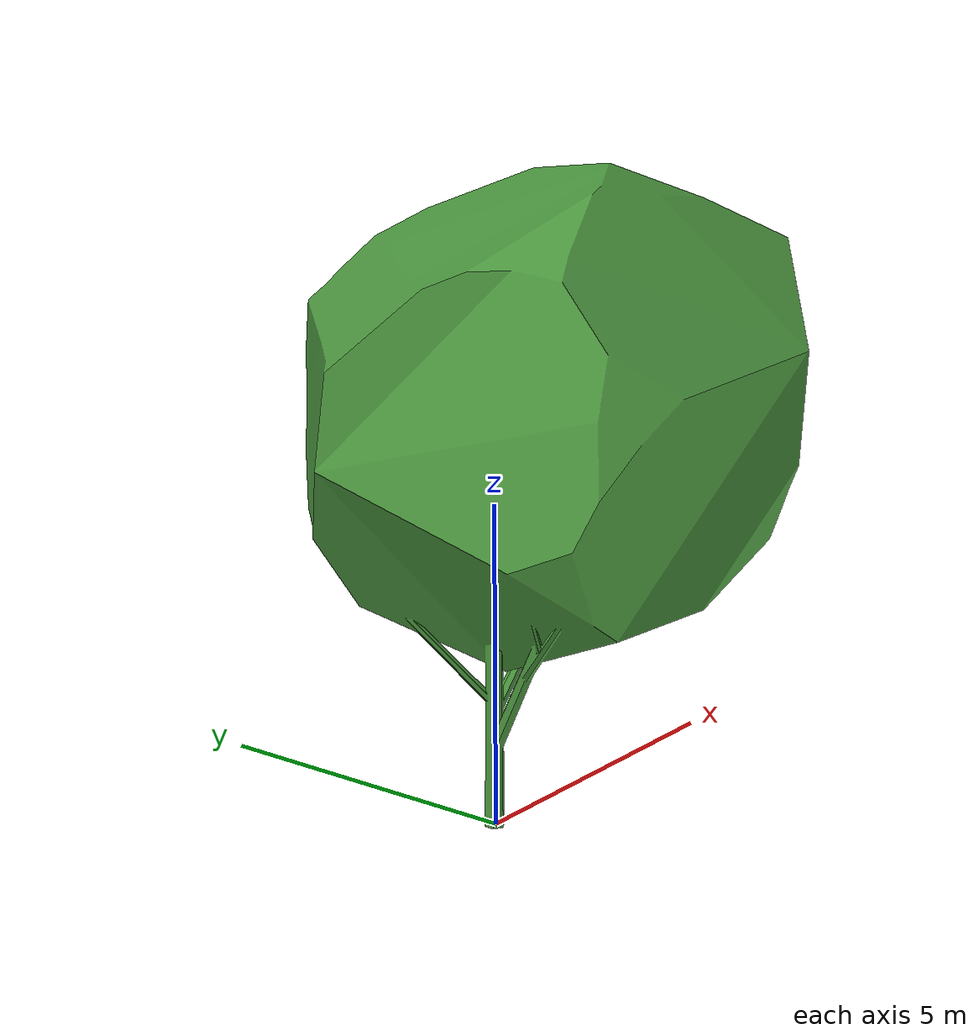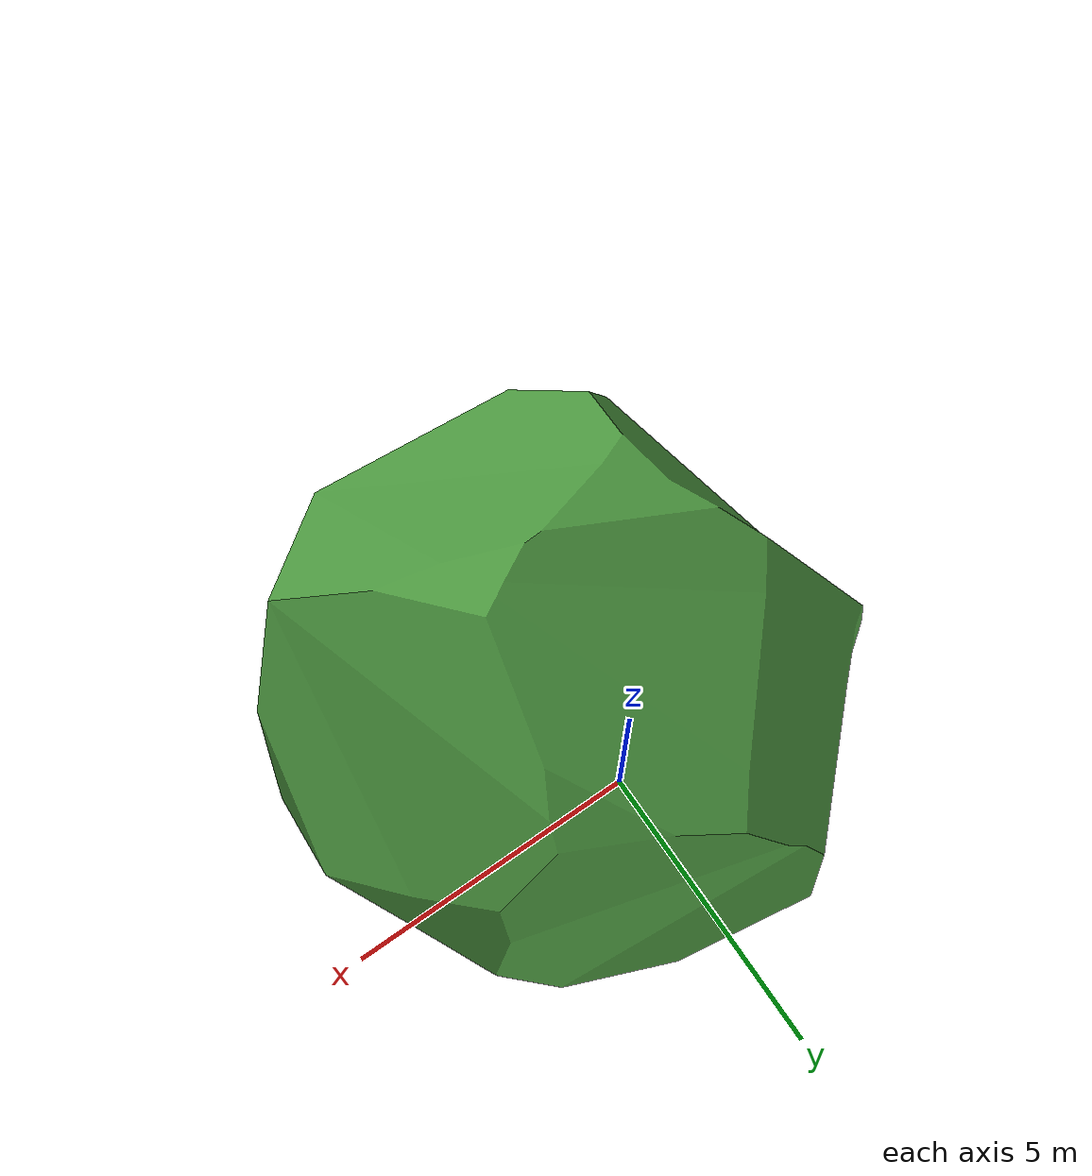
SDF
<?xml version="1.0" ?>
<sdf version="1.5">
  <model name="tree1">
   <static>0</static>
    <link name="link">
     <pose>0 0 0 0 0 0</pose>
      <inertial>
        <mass>500.0</mass>
        <inertia>
          <ixx>1535.75825-06</ixx>
          <ixy>0</ixy>
          <ixz>0</ixz>
          <iyy>1552.63025-05</iyy>
          <iyz>0</iyz>
          <izz>1039.74845-05</izz>
        </inertia>
      </inertial>

      <collision name="collision">
        <geometry>
          <mesh>
            <uri>model://tree1/meshes/tree10.dae</uri>
          </mesh>
        </geometry>
	</collision>

      <visual name="visual">
        <geometry>
	   <mesh>
            <uri>model://tree1/meshes/tree10.dae</uri>
          </mesh>
        </geometry>
	<material>
          <script>
            <uri>model://my_ground_plane/materials/scripts/my_ground_plane.material</uri>
            <name>MyGroundPlane/Grass</name>
          </script>
        </material>

      </visual>
    </link>
  </model>
</sdf>
